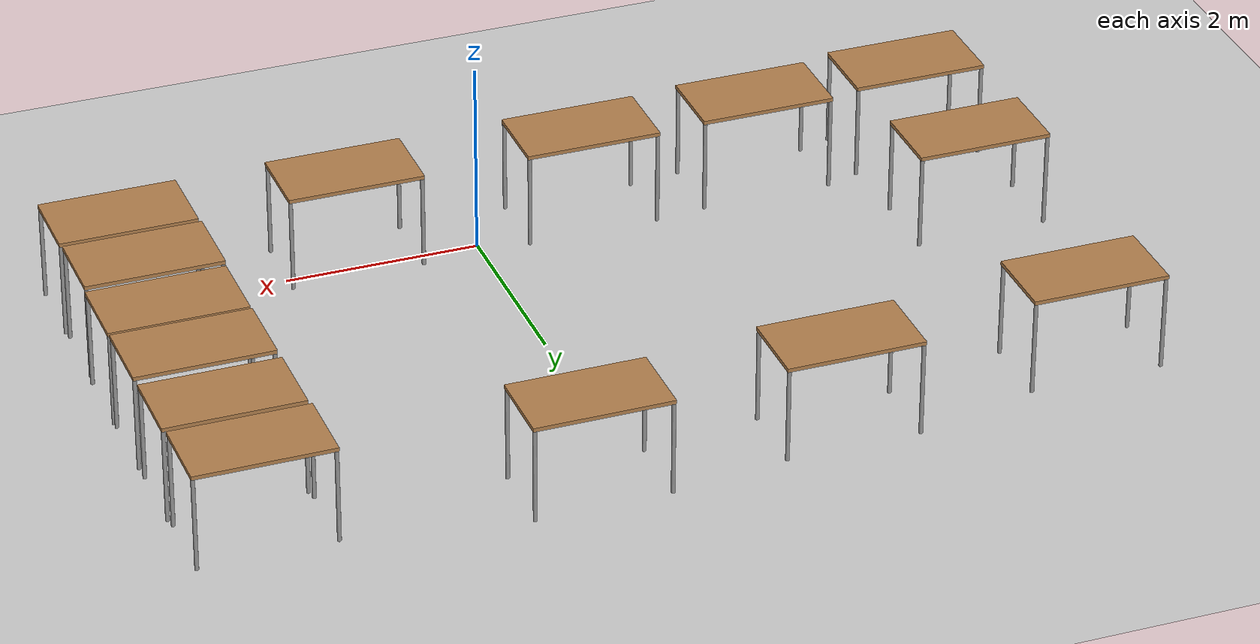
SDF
<sdf version="1.6">
 <world name="default">
  <light name="sun" type="directional">
   <pose>0 0 10 0 -0 0</pose>
   <diffuse>0.8 0.8 0.8 1</diffuse>
   <specular>0.1 0.1 0.1 1</specular>
   <attenuation>
    <range>1000</range>
    <constant>0.9</constant>
    <linear>0.01</linear>
    <quadratic>0.001</quadratic>
   </attenuation>
   <direction>-0.5 0.5 -1</direction>
  </light>
  <model name="ground_plane">
   <static>1</static>
   <link name="link">
    <collision name="collision">
     <geometry><plane><normal>0 0 1</normal><size>100 100</size></plane></geometry>
     <surface><friction><ode><mu>100</mu><mu2>50</mu2></ode></friction></surface>
    </collision>
    <visual name="visual">
     <cast_shadows>0</cast_shadows>
     <geometry><plane><normal>0 0 1</normal><size>100 100</size></plane></geometry>
     <material>
      <script><uri>file://media/materials/scripts/gazebo.material</uri><name>Gazebo/Grey</name></script>
     </material>
    </visual>
   </link>
  </model>
  <gravity>0 0 -9.8</gravity>
  <magnetic_field>6e-06 2.3e-05 -4.2e-05</magnetic_field>
  <atmosphere type="adiabatic"/>
  <physics name="default_physics" default="0" type="ode">
   <max_step_size>0.001</max_step_size>
   <real_time_factor>1</real_time_factor>
   <real_time_update_rate>1000</real_time_update_rate>
  </physics>
  <scene><ambient>0.4 0.4 0.4 1</ambient><background>0.7 0.7 0.7 1</background><shadows>1</shadows></scene>
  <spherical_coordinates>
   <surface_model>EARTH_WGS84</surface_model>
   <latitude_deg>0</latitude_deg>
   <longitude_deg>0</longitude_deg>
   <elevation>0</elevation>
   <heading_deg>0</heading_deg>
  </spherical_coordinates>
  <model name="table">
   <static>0</static>
   <link name="link">
    <collision name="surface">
     <pose>0 0 1 0 -0 0</pose>
     <geometry><box><size>1.5 0.8 0.03</size></box></geometry>
     <surface><friction><ode><mu>0.6</mu><mu2>0.6</mu2></ode></friction></surface>
    </collision>
    <visual name="visual1">
     <pose>0 0 1 0 -0 0</pose>
     <geometry><box><size>1.4 0.8 0.04</size></box></geometry>
     <material>
      <script><uri>file://media/materials/scripts/gazebo.material</uri><name>Gazebo/Wood</name></script>
     </material>
    </visual>
    <collision name="front_left_leg">
     <pose>0.68 0.38 0.5 0 -0 0</pose>
     <geometry><cylinder><radius>0.02</radius><length>1</length></cylinder></geometry>
    </collision>
    <visual name="front_left_leg">
     <pose>0.68 0.38 0.5 0 -0 0</pose>
     <geometry><cylinder><radius>0.02</radius><length>1</length></cylinder></geometry>
     <material>
      <script><uri>file://media/materials/scripts/gazebo.material</uri><name>Gazebo/Grey</name></script>
     </material>
    </visual>
    <collision name="front_right_leg">
     <pose>0.68 -0.38 0.5 0 -0 0</pose>
     <geometry><cylinder><radius>0.02</radius><length>1</length></cylinder></geometry>
    </collision>
    <visual name="front_right_leg">
     <pose>0.68 -0.38 0.5 0 -0 0</pose>
     <geometry><cylinder><radius>0.02</radius><length>1</length></cylinder></geometry>
     <material>
      <script><uri>file://media/materials/scripts/gazebo.material</uri><name>Gazebo/Grey</name></script>
     </material>
    </visual>
    <collision name="back_right_leg">
     <pose>-0.68 -0.38 0.5 0 -0 0</pose>
     <geometry><cylinder><radius>0.02</radius><length>1</length></cylinder></geometry>
    </collision>
    <visual name="back_right_leg">
     <pose>-0.68 -0.38 0.5 0 -0 0</pose>
     <geometry><cylinder><radius>0.02</radius><length>1</length></cylinder></geometry>
     <material>
      <script><uri>file://media/materials/scripts/gazebo.material</uri><name>Gazebo/Grey</name></script>
     </material>
    </visual>
    <collision name="back_left_leg">
     <pose>-0.68 0.38 0.5 0 -0 0</pose>
     <geometry><cylinder><radius>0.02</radius><length>1</length></cylinder></geometry>
    </collision>
    <visual name="back_left_leg">
     <pose>-0.68 0.38 0.5 0 -0 0</pose>
     <geometry><cylinder><radius>0.02</radius><length>1</length></cylinder></geometry>
     <material>
      <script><uri>file://media/materials/scripts/gazebo.material</uri><name>Gazebo/Grey</name></script>
     </material>
    </visual>
    <inertial>
     <inertia><ixx>1</ixx><ixy>0</ixy><ixz>0</ixz><iyy>1</iyy><iyz>0</iyz><izz>1</izz></inertia>
     <mass>1</mass>
    </inertial>
   </link>
   <pose>-1.19067 -0.23814 -9e-06 -1e-06 0 0</pose>
  </model>
  <model name="table_0">
   <static>0</static>
   <link name="link">
    <collision name="surface">
     <pose>0 0 1 0 -0 0</pose>
     <geometry><box><size>1.5 0.8 0.03</size></box></geometry>
     <surface><friction><ode><mu>0.6</mu><mu2>0.6</mu2></ode></friction></surface>
    </collision>
    <visual name="visual1">
     <pose>0 0 1 0 -0 0</pose>
     <geometry><box><size>1.4 0.8 0.04</size></box></geometry>
     <material>
      <script><uri>file://media/materials/scripts/gazebo.material</uri><name>Gazebo/Wood</name></script>
     </material>
    </visual>
    <collision name="front_left_leg">
     <pose>0.68 0.38 0.5 0 -0 0</pose>
     <geometry><cylinder><radius>0.02</radius><length>1</length></cylinder></geometry>
    </collision>
    <visual name="front_left_leg">
     <pose>0.68 0.38 0.5 0 -0 0</pose>
     <geometry><cylinder><radius>0.02</radius><length>1</length></cylinder></geometry>
     <material>
      <script><uri>file://media/materials/scripts/gazebo.material</uri><name>Gazebo/Grey</name></script>
     </material>
    </visual>
    <collision name="front_right_leg">
     <pose>0.68 -0.38 0.5 0 -0 0</pose>
     <geometry><cylinder><radius>0.02</radius><length>1</length></cylinder></geometry>
    </collision>
    <visual name="front_right_leg">
     <pose>0.68 -0.38 0.5 0 -0 0</pose>
     <geometry><cylinder><radius>0.02</radius><length>1</length></cylinder></geometry>
     <material>
      <script><uri>file://media/materials/scripts/gazebo.material</uri><name>Gazebo/Grey</name></script>
     </material>
    </visual>
    <collision name="back_right_leg">
     <pose>-0.68 -0.38 0.5 0 -0 0</pose>
     <geometry><cylinder><radius>0.02</radius><length>1</length></cylinder></geometry>
    </collision>
    <visual name="back_right_leg">
     <pose>-0.68 -0.38 0.5 0 -0 0</pose>
     <geometry><cylinder><radius>0.02</radius><length>1</length></cylinder></geometry>
     <material>
      <script><uri>file://media/materials/scripts/gazebo.material</uri><name>Gazebo/Grey</name></script>
     </material>
    </visual>
    <collision name="back_left_leg">
     <pose>-0.68 0.38 0.5 0 -0 0</pose>
     <geometry><cylinder><radius>0.02</radius><length>1</length></cylinder></geometry>
    </collision>
    <visual name="back_left_leg">
     <pose>-0.68 0.38 0.5 0 -0 0</pose>
     <geometry><cylinder><radius>0.02</radius><length>1</length></cylinder></geometry>
     <material>
      <script><uri>file://media/materials/scripts/gazebo.material</uri><name>Gazebo/Grey</name></script>
     </material>
    </visual>
    <inertial>
     <inertia><ixx>1</ixx><ixy>0</ixy><ixz>0</ixz><iyy>1</iyy><iyz>0</iyz><izz>1</izz></inertia>
     <mass>1</mass>
    </inertial>
   </link>
   <pose>1.29468 -0.235959 -1e-06 1e-06 -0 0</pose>
  </model>
  <model name="table_1">
   <static>0</static>
   <link name="link">
    <collision name="surface">
     <pose>0 0 1 0 -0 0</pose>
     <geometry><box><size>1.5 0.8 0.03</size></box></geometry>
     <surface><friction><ode><mu>0.6</mu><mu2>0.6</mu2></ode></friction></surface>
    </collision>
    <visual name="visual1">
     <pose>0 0 1 0 -0 0</pose>
     <geometry><box><size>1.4 0.8 0.04</size></box></geometry>
     <material>
      <script><uri>file://media/materials/scripts/gazebo.material</uri><name>Gazebo/Wood</name></script>
     </material>
    </visual>
    <collision name="front_left_leg">
     <pose>0.68 0.38 0.5 0 -0 0</pose>
     <geometry><cylinder><radius>0.02</radius><length>1</length></cylinder></geometry>
    </collision>
    <visual name="front_left_leg">
     <pose>0.68 0.38 0.5 0 -0 0</pose>
     <geometry><cylinder><radius>0.02</radius><length>1</length></cylinder></geometry>
     <material>
      <script><uri>file://media/materials/scripts/gazebo.material</uri><name>Gazebo/Grey</name></script>
     </material>
    </visual>
    <collision name="front_right_leg">
     <pose>0.68 -0.38 0.5 0 -0 0</pose>
     <geometry><cylinder><radius>0.02</radius><length>1</length></cylinder></geometry>
    </collision>
    <visual name="front_right_leg">
     <pose>0.68 -0.38 0.5 0 -0 0</pose>
     <geometry><cylinder><radius>0.02</radius><length>1</length></cylinder></geometry>
     <material>
      <script><uri>file://media/materials/scripts/gazebo.material</uri><name>Gazebo/Grey</name></script>
     </material>
    </visual>
    <collision name="back_right_leg">
     <pose>-0.68 -0.38 0.5 0 -0 0</pose>
     <geometry><cylinder><radius>0.02</radius><length>1</length></cylinder></geometry>
    </collision>
    <visual name="back_right_leg">
     <pose>-0.68 -0.38 0.5 0 -0 0</pose>
     <geometry><cylinder><radius>0.02</radius><length>1</length></cylinder></geometry>
     <material>
      <script><uri>file://media/materials/scripts/gazebo.material</uri><name>Gazebo/Grey</name></script>
     </material>
    </visual>
    <collision name="back_left_leg">
     <pose>-0.68 0.38 0.5 0 -0 0</pose>
     <geometry><cylinder><radius>0.02</radius><length>1</length></cylinder></geometry>
    </collision>
    <visual name="back_left_leg">
     <pose>-0.68 0.38 0.5 0 -0 0</pose>
     <geometry><cylinder><radius>0.02</radius><length>1</length></cylinder></geometry>
     <material>
      <script><uri>file://media/materials/scripts/gazebo.material</uri><name>Gazebo/Grey</name></script>
     </material>
    </visual>
    <inertial>
     <inertia><ixx>1</ixx><ixy>0</ixy><ixz>0</ixz><iyy>1</iyy><iyz>0</iyz><izz>1</izz></inertia>
     <mass>1</mass>
    </inertial>
   </link>
   <pose>3.62401 -0.207758 -1e-06 -1e-06 1e-06 0</pose>
  </model>
  <model name="table_2">
   <static>0</static>
   <link name="link">
    <collision name="surface">
     <pose>0 0 1 0 -0 0</pose>
     <geometry><box><size>1.5 0.8 0.03</size></box></geometry>
     <surface><friction><ode><mu>0.6</mu><mu2>0.6</mu2></ode></friction></surface>
    </collision>
    <visual name="visual1">
     <pose>0 0 1 0 -0 0</pose>
     <geometry><box><size>1.4 0.8 0.04</size></box></geometry>
     <material>
      <script><uri>file://media/materials/scripts/gazebo.material</uri><name>Gazebo/Wood</name></script>
     </material>
    </visual>
    <collision name="front_left_leg">
     <pose>0.68 0.38 0.5 0 -0 0</pose>
     <geometry><cylinder><radius>0.02</radius><length>1</length></cylinder></geometry>
    </collision>
    <visual name="front_left_leg">
     <pose>0.68 0.38 0.5 0 -0 0</pose>
     <geometry><cylinder><radius>0.02</radius><length>1</length></cylinder></geometry>
     <material>
      <script><uri>file://media/materials/scripts/gazebo.material</uri><name>Gazebo/Grey</name></script>
     </material>
    </visual>
    <collision name="front_right_leg">
     <pose>0.68 -0.38 0.5 0 -0 0</pose>
     <geometry><cylinder><radius>0.02</radius><length>1</length></cylinder></geometry>
    </collision>
    <visual name="front_right_leg">
     <pose>0.68 -0.38 0.5 0 -0 0</pose>
     <geometry><cylinder><radius>0.02</radius><length>1</length></cylinder></geometry>
     <material>
      <script><uri>file://media/materials/scripts/gazebo.material</uri><name>Gazebo/Grey</name></script>
     </material>
    </visual>
    <collision name="back_right_leg">
     <pose>-0.68 -0.38 0.5 0 -0 0</pose>
     <geometry><cylinder><radius>0.02</radius><length>1</length></cylinder></geometry>
    </collision>
    <visual name="back_right_leg">
     <pose>-0.68 -0.38 0.5 0 -0 0</pose>
     <geometry><cylinder><radius>0.02</radius><length>1</length></cylinder></geometry>
     <material>
      <script><uri>file://media/materials/scripts/gazebo.material</uri><name>Gazebo/Grey</name></script>
     </material>
    </visual>
    <collision name="back_left_leg">
     <pose>-0.68 0.38 0.5 0 -0 0</pose>
     <geometry><cylinder><radius>0.02</radius><length>1</length></cylinder></geometry>
    </collision>
    <visual name="back_left_leg">
     <pose>-0.68 0.38 0.5 0 -0 0</pose>
     <geometry><cylinder><radius>0.02</radius><length>1</length></cylinder></geometry>
     <material>
      <script><uri>file://media/materials/scripts/gazebo.material</uri><name>Gazebo/Grey</name></script>
     </material>
    </visual>
    <inertial>
     <inertia><ixx>1</ixx><ixy>0</ixy><ixz>0</ixz><iyy>1</iyy><iyz>0</iyz><izz>1</izz></inertia>
     <mass>1</mass>
    </inertial>
   </link>
   <pose>3.60755 0.64699 -1e-06 -1e-06 1e-06 0</pose>
  </model>
  <model name="table_3">
   <static>0</static>
   <link name="link">
    <collision name="surface">
     <pose>0 0 1 0 -0 0</pose>
     <geometry><box><size>1.5 0.8 0.03</size></box></geometry>
     <surface><friction><ode><mu>0.6</mu><mu2>0.6</mu2></ode></friction></surface>
    </collision>
    <visual name="visual1">
     <pose>0 0 1 0 -0 0</pose>
     <geometry><box><size>1.4 0.8 0.04</size></box></geometry>
     <material>
      <script><uri>file://media/materials/scripts/gazebo.material</uri><name>Gazebo/Wood</name></script>
     </material>
    </visual>
    <collision name="front_left_leg">
     <pose>0.68 0.38 0.5 0 -0 0</pose>
     <geometry><cylinder><radius>0.02</radius><length>1</length></cylinder></geometry>
    </collision>
    <visual name="front_left_leg">
     <pose>0.68 0.38 0.5 0 -0 0</pose>
     <geometry><cylinder><radius>0.02</radius><length>1</length></cylinder></geometry>
     <material>
      <script><uri>file://media/materials/scripts/gazebo.material</uri><name>Gazebo/Grey</name></script>
     </material>
    </visual>
    <collision name="front_right_leg">
     <pose>0.68 -0.38 0.5 0 -0 0</pose>
     <geometry><cylinder><radius>0.02</radius><length>1</length></cylinder></geometry>
    </collision>
    <visual name="front_right_leg">
     <pose>0.68 -0.38 0.5 0 -0 0</pose>
     <geometry><cylinder><radius>0.02</radius><length>1</length></cylinder></geometry>
     <material>
      <script><uri>file://media/materials/scripts/gazebo.material</uri><name>Gazebo/Grey</name></script>
     </material>
    </visual>
    <collision name="back_right_leg">
     <pose>-0.68 -0.38 0.5 0 -0 0</pose>
     <geometry><cylinder><radius>0.02</radius><length>1</length></cylinder></geometry>
    </collision>
    <visual name="back_right_leg">
     <pose>-0.68 -0.38 0.5 0 -0 0</pose>
     <geometry><cylinder><radius>0.02</radius><length>1</length></cylinder></geometry>
     <material>
      <script><uri>file://media/materials/scripts/gazebo.material</uri><name>Gazebo/Grey</name></script>
     </material>
    </visual>
    <collision name="back_left_leg">
     <pose>-0.68 0.38 0.5 0 -0 0</pose>
     <geometry><cylinder><radius>0.02</radius><length>1</length></cylinder></geometry>
    </collision>
    <visual name="back_left_leg">
     <pose>-0.68 0.38 0.5 0 -0 0</pose>
     <geometry><cylinder><radius>0.02</radius><length>1</length></cylinder></geometry>
     <material>
      <script><uri>file://media/materials/scripts/gazebo.material</uri><name>Gazebo/Grey</name></script>
     </material>
    </visual>
    <inertial>
     <inertia><ixx>1</ixx><ixy>0</ixy><ixz>0</ixz><iyy>1</iyy><iyz>0</iyz><izz>1</izz></inertia>
     <mass>1</mass>
    </inertial>
   </link>
   <pose>3.63 1.5376 -9e-06 1e-06 -1e-06 0</pose>
  </model>
  <model name="table_4">
   <static>0</static>
   <link name="link">
    <collision name="surface">
     <pose>0 0 1 0 -0 0</pose>
     <geometry><box><size>1.5 0.8 0.03</size></box></geometry>
     <surface><friction><ode><mu>0.6</mu><mu2>0.6</mu2></ode></friction></surface>
    </collision>
    <visual name="visual1">
     <pose>0 0 1 0 -0 0</pose>
     <geometry><box><size>1.4 0.8 0.04</size></box></geometry>
     <material>
      <script><uri>file://media/materials/scripts/gazebo.material</uri><name>Gazebo/Wood</name></script>
     </material>
    </visual>
    <collision name="front_left_leg">
     <pose>0.68 0.38 0.5 0 -0 0</pose>
     <geometry><cylinder><radius>0.02</radius><length>1</length></cylinder></geometry>
    </collision>
    <visual name="front_left_leg">
     <pose>0.68 0.38 0.5 0 -0 0</pose>
     <geometry><cylinder><radius>0.02</radius><length>1</length></cylinder></geometry>
     <material>
      <script><uri>file://media/materials/scripts/gazebo.material</uri><name>Gazebo/Grey</name></script>
     </material>
    </visual>
    <collision name="front_right_leg">
     <pose>0.68 -0.38 0.5 0 -0 0</pose>
     <geometry><cylinder><radius>0.02</radius><length>1</length></cylinder></geometry>
    </collision>
    <visual name="front_right_leg">
     <pose>0.68 -0.38 0.5 0 -0 0</pose>
     <geometry><cylinder><radius>0.02</radius><length>1</length></cylinder></geometry>
     <material>
      <script><uri>file://media/materials/scripts/gazebo.material</uri><name>Gazebo/Grey</name></script>
     </material>
    </visual>
    <collision name="back_right_leg">
     <pose>-0.68 -0.38 0.5 0 -0 0</pose>
     <geometry><cylinder><radius>0.02</radius><length>1</length></cylinder></geometry>
    </collision>
    <visual name="back_right_leg">
     <pose>-0.68 -0.38 0.5 0 -0 0</pose>
     <geometry><cylinder><radius>0.02</radius><length>1</length></cylinder></geometry>
     <material>
      <script><uri>file://media/materials/scripts/gazebo.material</uri><name>Gazebo/Grey</name></script>
     </material>
    </visual>
    <collision name="back_left_leg">
     <pose>-0.68 0.38 0.5 0 -0 0</pose>
     <geometry><cylinder><radius>0.02</radius><length>1</length></cylinder></geometry>
    </collision>
    <visual name="back_left_leg">
     <pose>-0.68 0.38 0.5 0 -0 0</pose>
     <geometry><cylinder><radius>0.02</radius><length>1</length></cylinder></geometry>
     <material>
      <script><uri>file://media/materials/scripts/gazebo.material</uri><name>Gazebo/Grey</name></script>
     </material>
    </visual>
    <inertial>
     <inertia><ixx>1</ixx><ixy>0</ixy><ixz>0</ixz><iyy>1</iyy><iyz>0</iyz><izz>1</izz></inertia>
     <mass>1</mass>
    </inertial>
   </link>
   <pose>3.62156 2.36845 -1e-06 -1e-06 1e-06 0</pose>
  </model>
  <model name="table_5">
   <static>0</static>
   <link name="link">
    <collision name="surface">
     <pose>0 0 1 0 -0 0</pose>
     <geometry><box><size>1.5 0.8 0.03</size></box></geometry>
     <surface><friction><ode><mu>0.6</mu><mu2>0.6</mu2></ode></friction></surface>
    </collision>
    <visual name="visual1">
     <pose>0 0 1 0 -0 0</pose>
     <geometry><box><size>1.4 0.8 0.04</size></box></geometry>
     <material>
      <script><uri>file://media/materials/scripts/gazebo.material</uri><name>Gazebo/Wood</name></script>
     </material>
    </visual>
    <collision name="front_left_leg">
     <pose>0.68 0.38 0.5 0 -0 0</pose>
     <geometry><cylinder><radius>0.02</radius><length>1</length></cylinder></geometry>
    </collision>
    <visual name="front_left_leg">
     <pose>0.68 0.38 0.5 0 -0 0</pose>
     <geometry><cylinder><radius>0.02</radius><length>1</length></cylinder></geometry>
     <material>
      <script><uri>file://media/materials/scripts/gazebo.material</uri><name>Gazebo/Grey</name></script>
     </material>
    </visual>
    <collision name="front_right_leg">
     <pose>0.68 -0.38 0.5 0 -0 0</pose>
     <geometry><cylinder><radius>0.02</radius><length>1</length></cylinder></geometry>
    </collision>
    <visual name="front_right_leg">
     <pose>0.68 -0.38 0.5 0 -0 0</pose>
     <geometry><cylinder><radius>0.02</radius><length>1</length></cylinder></geometry>
     <material>
      <script><uri>file://media/materials/scripts/gazebo.material</uri><name>Gazebo/Grey</name></script>
     </material>
    </visual>
    <collision name="back_right_leg">
     <pose>-0.68 -0.38 0.5 0 -0 0</pose>
     <geometry><cylinder><radius>0.02</radius><length>1</length></cylinder></geometry>
    </collision>
    <visual name="back_right_leg">
     <pose>-0.68 -0.38 0.5 0 -0 0</pose>
     <geometry><cylinder><radius>0.02</radius><length>1</length></cylinder></geometry>
     <material>
      <script><uri>file://media/materials/scripts/gazebo.material</uri><name>Gazebo/Grey</name></script>
     </material>
    </visual>
    <collision name="back_left_leg">
     <pose>-0.68 0.38 0.5 0 -0 0</pose>
     <geometry><cylinder><radius>0.02</radius><length>1</length></cylinder></geometry>
    </collision>
    <visual name="back_left_leg">
     <pose>-0.68 0.38 0.5 0 -0 0</pose>
     <geometry><cylinder><radius>0.02</radius><length>1</length></cylinder></geometry>
     <material>
      <script><uri>file://media/materials/scripts/gazebo.material</uri><name>Gazebo/Grey</name></script>
     </material>
    </visual>
    <inertial>
     <inertia><ixx>1</ixx><ixy>0</ixy><ixz>0</ixz><iyy>1</iyy><iyz>0</iyz><izz>1</izz></inertia>
     <mass>1</mass>
    </inertial>
   </link>
   <pose>3.61666 3.30077 -9e-06 1e-06 -1e-06 0</pose>
  </model>
  <model name="table_6">
   <static>0</static>
   <link name="link">
    <collision name="surface">
     <pose>0 0 1 0 -0 0</pose>
     <geometry><box><size>1.5 0.8 0.03</size></box></geometry>
     <surface><friction><ode><mu>0.6</mu><mu2>0.6</mu2></ode></friction></surface>
    </collision>
    <visual name="visual1">
     <pose>0 0 1 0 -0 0</pose>
     <geometry><box><size>1.4 0.8 0.04</size></box></geometry>
     <material>
      <script><uri>file://media/materials/scripts/gazebo.material</uri><name>Gazebo/Wood</name></script>
     </material>
    </visual>
    <collision name="front_left_leg">
     <pose>0.68 0.38 0.5 0 -0 0</pose>
     <geometry><cylinder><radius>0.02</radius><length>1</length></cylinder></geometry>
    </collision>
    <visual name="front_left_leg">
     <pose>0.68 0.38 0.5 0 -0 0</pose>
     <geometry><cylinder><radius>0.02</radius><length>1</length></cylinder></geometry>
     <material>
      <script><uri>file://media/materials/scripts/gazebo.material</uri><name>Gazebo/Grey</name></script>
     </material>
    </visual>
    <collision name="front_right_leg">
     <pose>0.68 -0.38 0.5 0 -0 0</pose>
     <geometry><cylinder><radius>0.02</radius><length>1</length></cylinder></geometry>
    </collision>
    <visual name="front_right_leg">
     <pose>0.68 -0.38 0.5 0 -0 0</pose>
     <geometry><cylinder><radius>0.02</radius><length>1</length></cylinder></geometry>
     <material>
      <script><uri>file://media/materials/scripts/gazebo.material</uri><name>Gazebo/Grey</name></script>
     </material>
    </visual>
    <collision name="back_right_leg">
     <pose>-0.68 -0.38 0.5 0 -0 0</pose>
     <geometry><cylinder><radius>0.02</radius><length>1</length></cylinder></geometry>
    </collision>
    <visual name="back_right_leg">
     <pose>-0.68 -0.38 0.5 0 -0 0</pose>
     <geometry><cylinder><radius>0.02</radius><length>1</length></cylinder></geometry>
     <material>
      <script><uri>file://media/materials/scripts/gazebo.material</uri><name>Gazebo/Grey</name></script>
     </material>
    </visual>
    <collision name="back_left_leg">
     <pose>-0.68 0.38 0.5 0 -0 0</pose>
     <geometry><cylinder><radius>0.02</radius><length>1</length></cylinder></geometry>
    </collision>
    <visual name="back_left_leg">
     <pose>-0.68 0.38 0.5 0 -0 0</pose>
     <geometry><cylinder><radius>0.02</radius><length>1</length></cylinder></geometry>
     <material>
      <script><uri>file://media/materials/scripts/gazebo.material</uri><name>Gazebo/Grey</name></script>
     </material>
    </visual>
    <inertial>
     <inertia><ixx>1</ixx><ixy>0</ixy><ixz>0</ixz><iyy>1</iyy><iyz>0</iyz><izz>1</izz></inertia>
     <mass>1</mass>
    </inertial>
   </link>
   <pose>-3.08496 -0.2967 -1e-06 -1e-06 1e-06 0</pose>
  </model>
  <model name="table_7">
   <static>0</static>
   <link name="link">
    <collision name="surface">
     <pose>0 0 1 0 -0 0</pose>
     <geometry><box><size>1.5 0.8 0.03</size></box></geometry>
     <surface><friction><ode><mu>0.6</mu><mu2>0.6</mu2></ode></friction></surface>
    </collision>
    <visual name="visual1">
     <pose>0 0 1 0 -0 0</pose>
     <geometry><box><size>1.4 0.8 0.04</size></box></geometry>
     <material>
      <script><uri>file://media/materials/scripts/gazebo.material</uri><name>Gazebo/Wood</name></script>
     </material>
    </visual>
    <collision name="front_left_leg">
     <pose>0.68 0.38 0.5 0 -0 0</pose>
     <geometry><cylinder><radius>0.02</radius><length>1</length></cylinder></geometry>
    </collision>
    <visual name="front_left_leg">
     <pose>0.68 0.38 0.5 0 -0 0</pose>
     <geometry><cylinder><radius>0.02</radius><length>1</length></cylinder></geometry>
     <material>
      <script><uri>file://media/materials/scripts/gazebo.material</uri><name>Gazebo/Grey</name></script>
     </material>
    </visual>
    <collision name="front_right_leg">
     <pose>0.68 -0.38 0.5 0 -0 0</pose>
     <geometry><cylinder><radius>0.02</radius><length>1</length></cylinder></geometry>
    </collision>
    <visual name="front_right_leg">
     <pose>0.68 -0.38 0.5 0 -0 0</pose>
     <geometry><cylinder><radius>0.02</radius><length>1</length></cylinder></geometry>
     <material>
      <script><uri>file://media/materials/scripts/gazebo.material</uri><name>Gazebo/Grey</name></script>
     </material>
    </visual>
    <collision name="back_right_leg">
     <pose>-0.68 -0.38 0.5 0 -0 0</pose>
     <geometry><cylinder><radius>0.02</radius><length>1</length></cylinder></geometry>
    </collision>
    <visual name="back_right_leg">
     <pose>-0.68 -0.38 0.5 0 -0 0</pose>
     <geometry><cylinder><radius>0.02</radius><length>1</length></cylinder></geometry>
     <material>
      <script><uri>file://media/materials/scripts/gazebo.material</uri><name>Gazebo/Grey</name></script>
     </material>
    </visual>
    <collision name="back_left_leg">
     <pose>-0.68 0.38 0.5 0 -0 0</pose>
     <geometry><cylinder><radius>0.02</radius><length>1</length></cylinder></geometry>
    </collision>
    <visual name="back_left_leg">
     <pose>-0.68 0.38 0.5 0 -0 0</pose>
     <geometry><cylinder><radius>0.02</radius><length>1</length></cylinder></geometry>
     <material>
      <script><uri>file://media/materials/scripts/gazebo.material</uri><name>Gazebo/Grey</name></script>
     </material>
    </visual>
    <inertial>
     <inertia><ixx>1</ixx><ixy>0</ixy><ixz>0</ixz><iyy>1</iyy><iyz>0</iyz><izz>1</izz></inertia>
     <mass>1</mass>
    </inertial>
   </link>
   <pose>3.59184 4.16035 -9e-06 1e-06 -1e-06 0</pose>
  </model>
  <model name="table_8">
   <static>0</static>
   <link name="link">
    <collision name="surface">
     <pose>0 0 1 0 -0 0</pose>
     <geometry><box><size>1.5 0.8 0.03</size></box></geometry>
     <surface><friction><ode><mu>0.6</mu><mu2>0.6</mu2></ode></friction></surface>
    </collision>
    <visual name="visual1">
     <pose>0 0 1 0 -0 0</pose>
     <geometry><box><size>1.4 0.8 0.04</size></box></geometry>
     <material>
      <script><uri>file://media/materials/scripts/gazebo.material</uri><name>Gazebo/Wood</name></script>
     </material>
    </visual>
    <collision name="front_left_leg">
     <pose>0.68 0.38 0.5 0 -0 0</pose>
     <geometry><cylinder><radius>0.02</radius><length>1</length></cylinder></geometry>
    </collision>
    <visual name="front_left_leg">
     <pose>0.68 0.38 0.5 0 -0 0</pose>
     <geometry><cylinder><radius>0.02</radius><length>1</length></cylinder></geometry>
     <material>
      <script><uri>file://media/materials/scripts/gazebo.material</uri><name>Gazebo/Grey</name></script>
     </material>
    </visual>
    <collision name="front_right_leg">
     <pose>0.68 -0.38 0.5 0 -0 0</pose>
     <geometry><cylinder><radius>0.02</radius><length>1</length></cylinder></geometry>
    </collision>
    <visual name="front_right_leg">
     <pose>0.68 -0.38 0.5 0 -0 0</pose>
     <geometry><cylinder><radius>0.02</radius><length>1</length></cylinder></geometry>
     <material>
      <script><uri>file://media/materials/scripts/gazebo.material</uri><name>Gazebo/Grey</name></script>
     </material>
    </visual>
    <collision name="back_right_leg">
     <pose>-0.68 -0.38 0.5 0 -0 0</pose>
     <geometry><cylinder><radius>0.02</radius><length>1</length></cylinder></geometry>
    </collision>
    <visual name="back_right_leg">
     <pose>-0.68 -0.38 0.5 0 -0 0</pose>
     <geometry><cylinder><radius>0.02</radius><length>1</length></cylinder></geometry>
     <material>
      <script><uri>file://media/materials/scripts/gazebo.material</uri><name>Gazebo/Grey</name></script>
     </material>
    </visual>
    <collision name="back_left_leg">
     <pose>-0.68 0.38 0.5 0 -0 0</pose>
     <geometry><cylinder><radius>0.02</radius><length>1</length></cylinder></geometry>
    </collision>
    <visual name="back_left_leg">
     <pose>-0.68 0.38 0.5 0 -0 0</pose>
     <geometry><cylinder><radius>0.02</radius><length>1</length></cylinder></geometry>
     <material>
      <script><uri>file://media/materials/scripts/gazebo.material</uri><name>Gazebo/Grey</name></script>
     </material>
    </visual>
    <inertial>
     <inertia><ixx>1</ixx><ixy>0</ixy><ixz>0</ixz><iyy>1</iyy><iyz>0</iyz><izz>1</izz></inertia>
     <mass>1</mass>
    </inertial>
   </link>
   <pose>-4.79562 -0.403013 -1e-06 -1e-06 1e-06 0</pose>
  </model>
  <model name="table_9">
   <static>0</static>
   <link name="link">
    <collision name="surface">
     <pose>0 0 1 0 -0 0</pose>
     <geometry><box><size>1.5 0.8 0.03</size></box></geometry>
     <surface><friction><ode><mu>0.6</mu><mu2>0.6</mu2></ode></friction></surface>
    </collision>
    <visual name="visual1">
     <pose>0 0 1 0 -0 0</pose>
     <geometry><box><size>1.4 0.8 0.04</size></box></geometry>
     <material>
      <script><uri>file://media/materials/scripts/gazebo.material</uri><name>Gazebo/Wood</name></script>
     </material>
    </visual>
    <collision name="front_left_leg">
     <pose>0.68 0.38 0.5 0 -0 0</pose>
     <geometry><cylinder><radius>0.02</radius><length>1</length></cylinder></geometry>
    </collision>
    <visual name="front_left_leg">
     <pose>0.68 0.38 0.5 0 -0 0</pose>
     <geometry><cylinder><radius>0.02</radius><length>1</length></cylinder></geometry>
     <material>
      <script><uri>file://media/materials/scripts/gazebo.material</uri><name>Gazebo/Grey</name></script>
     </material>
    </visual>
    <collision name="front_right_leg">
     <pose>0.68 -0.38 0.5 0 -0 0</pose>
     <geometry><cylinder><radius>0.02</radius><length>1</length></cylinder></geometry>
    </collision>
    <visual name="front_right_leg">
     <pose>0.68 -0.38 0.5 0 -0 0</pose>
     <geometry><cylinder><radius>0.02</radius><length>1</length></cylinder></geometry>
     <material>
      <script><uri>file://media/materials/scripts/gazebo.material</uri><name>Gazebo/Grey</name></script>
     </material>
    </visual>
    <collision name="back_right_leg">
     <pose>-0.68 -0.38 0.5 0 -0 0</pose>
     <geometry><cylinder><radius>0.02</radius><length>1</length></cylinder></geometry>
    </collision>
    <visual name="back_right_leg">
     <pose>-0.68 -0.38 0.5 0 -0 0</pose>
     <geometry><cylinder><radius>0.02</radius><length>1</length></cylinder></geometry>
     <material>
      <script><uri>file://media/materials/scripts/gazebo.material</uri><name>Gazebo/Grey</name></script>
     </material>
    </visual>
    <collision name="back_left_leg">
     <pose>-0.68 0.38 0.5 0 -0 0</pose>
     <geometry><cylinder><radius>0.02</radius><length>1</length></cylinder></geometry>
    </collision>
    <visual name="back_left_leg">
     <pose>-0.68 0.38 0.5 0 -0 0</pose>
     <geometry><cylinder><radius>0.02</radius><length>1</length></cylinder></geometry>
     <material>
      <script><uri>file://media/materials/scripts/gazebo.material</uri><name>Gazebo/Grey</name></script>
     </material>
    </visual>
    <inertial>
     <inertia><ixx>1</ixx><ixy>0</ixy><ixz>0</ixz><iyy>1</iyy><iyz>0</iyz><izz>1</izz></inertia>
     <mass>1</mass>
    </inertial>
   </link>
   <pose>-4.8396 1.13451 -9e-06 1e-06 -1e-06 0</pose>
  </model>
  <model name="table_10">
   <static>0</static>
   <link name="link">
    <collision name="surface">
     <pose>0 0 1 0 -0 0</pose>
     <geometry><box><size>1.5 0.8 0.03</size></box></geometry>
     <surface><friction><ode><mu>0.6</mu><mu2>0.6</mu2></ode></friction></surface>
    </collision>
    <visual name="visual1">
     <pose>0 0 1 0 -0 0</pose>
     <geometry><box><size>1.4 0.8 0.04</size></box></geometry>
     <material>
      <script><uri>file://media/materials/scripts/gazebo.material</uri><name>Gazebo/Wood</name></script>
     </material>
    </visual>
    <collision name="front_left_leg">
     <pose>0.68 0.38 0.5 0 -0 0</pose>
     <geometry><cylinder><radius>0.02</radius><length>1</length></cylinder></geometry>
    </collision>
    <visual name="front_left_leg">
     <pose>0.68 0.38 0.5 0 -0 0</pose>
     <geometry><cylinder><radius>0.02</radius><length>1</length></cylinder></geometry>
     <material>
      <script><uri>file://media/materials/scripts/gazebo.material</uri><name>Gazebo/Grey</name></script>
     </material>
    </visual>
    <collision name="front_right_leg">
     <pose>0.68 -0.38 0.5 0 -0 0</pose>
     <geometry><cylinder><radius>0.02</radius><length>1</length></cylinder></geometry>
    </collision>
    <visual name="front_right_leg">
     <pose>0.68 -0.38 0.5 0 -0 0</pose>
     <geometry><cylinder><radius>0.02</radius><length>1</length></cylinder></geometry>
     <material>
      <script><uri>file://media/materials/scripts/gazebo.material</uri><name>Gazebo/Grey</name></script>
     </material>
    </visual>
    <collision name="back_right_leg">
     <pose>-0.68 -0.38 0.5 0 -0 0</pose>
     <geometry><cylinder><radius>0.02</radius><length>1</length></cylinder></geometry>
    </collision>
    <visual name="back_right_leg">
     <pose>-0.68 -0.38 0.5 0 -0 0</pose>
     <geometry><cylinder><radius>0.02</radius><length>1</length></cylinder></geometry>
     <material>
      <script><uri>file://media/materials/scripts/gazebo.material</uri><name>Gazebo/Grey</name></script>
     </material>
    </visual>
    <collision name="back_left_leg">
     <pose>-0.68 0.38 0.5 0 -0 0</pose>
     <geometry><cylinder><radius>0.02</radius><length>1</length></cylinder></geometry>
    </collision>
    <visual name="back_left_leg">
     <pose>-0.68 0.38 0.5 0 -0 0</pose>
     <geometry><cylinder><radius>0.02</radius><length>1</length></cylinder></geometry>
     <material>
      <script><uri>file://media/materials/scripts/gazebo.material</uri><name>Gazebo/Grey</name></script>
     </material>
    </visual>
    <inertial>
     <inertia><ixx>1</ixx><ixy>0</ixy><ixz>0</ixz><iyy>1</iyy><iyz>0</iyz><izz>1</izz></inertia>
     <mass>1</mass>
    </inertial>
   </link>
   <pose>0.438856 4.4711 -2e-06 0 -0 0</pose>
  </model>
  <model name="table_11">
   <static>0</static>
   <link name="link">
    <collision name="surface">
     <pose>0 0 1 0 -0 0</pose>
     <geometry><box><size>1.5 0.8 0.03</size></box></geometry>
     <surface><friction><ode><mu>0.6</mu><mu2>0.6</mu2></ode></friction></surface>
    </collision>
    <visual name="visual1">
     <pose>0 0 1 0 -0 0</pose>
     <geometry><box><size>1.4 0.8 0.04</size></box></geometry>
     <material>
      <script><uri>file://media/materials/scripts/gazebo.material</uri><name>Gazebo/Wood</name></script>
     </material>
    </visual>
    <collision name="front_left_leg">
     <pose>0.68 0.38 0.5 0 -0 0</pose>
     <geometry><cylinder><radius>0.02</radius><length>1</length></cylinder></geometry>
    </collision>
    <visual name="front_left_leg">
     <pose>0.68 0.38 0.5 0 -0 0</pose>
     <geometry><cylinder><radius>0.02</radius><length>1</length></cylinder></geometry>
     <material>
      <script><uri>file://media/materials/scripts/gazebo.material</uri><name>Gazebo/Grey</name></script>
     </material>
    </visual>
    <collision name="front_right_leg">
     <pose>0.68 -0.38 0.5 0 -0 0</pose>
     <geometry><cylinder><radius>0.02</radius><length>1</length></cylinder></geometry>
    </collision>
    <visual name="front_right_leg">
     <pose>0.68 -0.38 0.5 0 -0 0</pose>
     <geometry><cylinder><radius>0.02</radius><length>1</length></cylinder></geometry>
     <material>
      <script><uri>file://media/materials/scripts/gazebo.material</uri><name>Gazebo/Grey</name></script>
     </material>
    </visual>
    <collision name="back_right_leg">
     <pose>-0.68 -0.38 0.5 0 -0 0</pose>
     <geometry><cylinder><radius>0.02</radius><length>1</length></cylinder></geometry>
    </collision>
    <visual name="back_right_leg">
     <pose>-0.68 -0.38 0.5 0 -0 0</pose>
     <geometry><cylinder><radius>0.02</radius><length>1</length></cylinder></geometry>
     <material>
      <script><uri>file://media/materials/scripts/gazebo.material</uri><name>Gazebo/Grey</name></script>
     </material>
    </visual>
    <collision name="back_left_leg">
     <pose>-0.68 0.38 0.5 0 -0 0</pose>
     <geometry><cylinder><radius>0.02</radius><length>1</length></cylinder></geometry>
    </collision>
    <visual name="back_left_leg">
     <pose>-0.68 0.38 0.5 0 -0 0</pose>
     <geometry><cylinder><radius>0.02</radius><length>1</length></cylinder></geometry>
     <material>
      <script><uri>file://media/materials/scripts/gazebo.material</uri><name>Gazebo/Grey</name></script>
     </material>
    </visual>
    <inertial>
     <inertia><ixx>1</ixx><ixy>0</ixy><ixz>0</ixz><iyy>1</iyy><iyz>0</iyz><izz>1</izz></inertia>
     <mass>1</mass>
    </inertial>
   </link>
   <pose>-2.12254 4.32801 -8e-06 0 -0 0</pose>
  </model>
  <model name="table_12">
   <static>0</static>
   <link name="link">
    <collision name="surface">
     <pose>0 0 1 0 -0 0</pose>
     <geometry><box><size>1.5 0.8 0.03</size></box></geometry>
     <surface><friction><ode><mu>0.6</mu><mu2>0.6</mu2></ode></friction></surface>
    </collision>
    <visual name="visual1">
     <pose>0 0 1 0 -0 0</pose>
     <geometry><box><size>1.4 0.8 0.04</size></box></geometry>
     <material>
      <script><uri>file://media/materials/scripts/gazebo.material</uri><name>Gazebo/Wood</name></script>
     </material>
    </visual>
    <collision name="front_left_leg">
     <pose>0.68 0.38 0.5 0 -0 0</pose>
     <geometry><cylinder><radius>0.02</radius><length>1</length></cylinder></geometry>
    </collision>
    <visual name="front_left_leg">
     <pose>0.68 0.38 0.5 0 -0 0</pose>
     <geometry><cylinder><radius>0.02</radius><length>1</length></cylinder></geometry>
     <material>
      <script><uri>file://media/materials/scripts/gazebo.material</uri><name>Gazebo/Grey</name></script>
     </material>
    </visual>
    <collision name="front_right_leg">
     <pose>0.68 -0.38 0.5 0 -0 0</pose>
     <geometry><cylinder><radius>0.02</radius><length>1</length></cylinder></geometry>
    </collision>
    <visual name="front_right_leg">
     <pose>0.68 -0.38 0.5 0 -0 0</pose>
     <geometry><cylinder><radius>0.02</radius><length>1</length></cylinder></geometry>
     <material>
      <script><uri>file://media/materials/scripts/gazebo.material</uri><name>Gazebo/Grey</name></script>
     </material>
    </visual>
    <collision name="back_right_leg">
     <pose>-0.68 -0.38 0.5 0 -0 0</pose>
     <geometry><cylinder><radius>0.02</radius><length>1</length></cylinder></geometry>
    </collision>
    <visual name="back_right_leg">
     <pose>-0.68 -0.38 0.5 0 -0 0</pose>
     <geometry><cylinder><radius>0.02</radius><length>1</length></cylinder></geometry>
     <material>
      <script><uri>file://media/materials/scripts/gazebo.material</uri><name>Gazebo/Grey</name></script>
     </material>
    </visual>
    <collision name="back_left_leg">
     <pose>-0.68 0.38 0.5 0 -0 0</pose>
     <geometry><cylinder><radius>0.02</radius><length>1</length></cylinder></geometry>
    </collision>
    <visual name="back_left_leg">
     <pose>-0.68 0.38 0.5 0 -0 0</pose>
     <geometry><cylinder><radius>0.02</radius><length>1</length></cylinder></geometry>
     <material>
      <script><uri>file://media/materials/scripts/gazebo.material</uri><name>Gazebo/Grey</name></script>
     </material>
    </visual>
    <inertial>
     <inertia><ixx>1</ixx><ixy>0</ixy><ixz>0</ixz><iyy>1</iyy><iyz>0</iyz><izz>1</izz></inertia>
     <mass>1</mass>
    </inertial>
   </link>
   <pose>-4.76692 4.02883 -2e-06 0 -0 0</pose>
  </model>
 </world>
</sdf>
